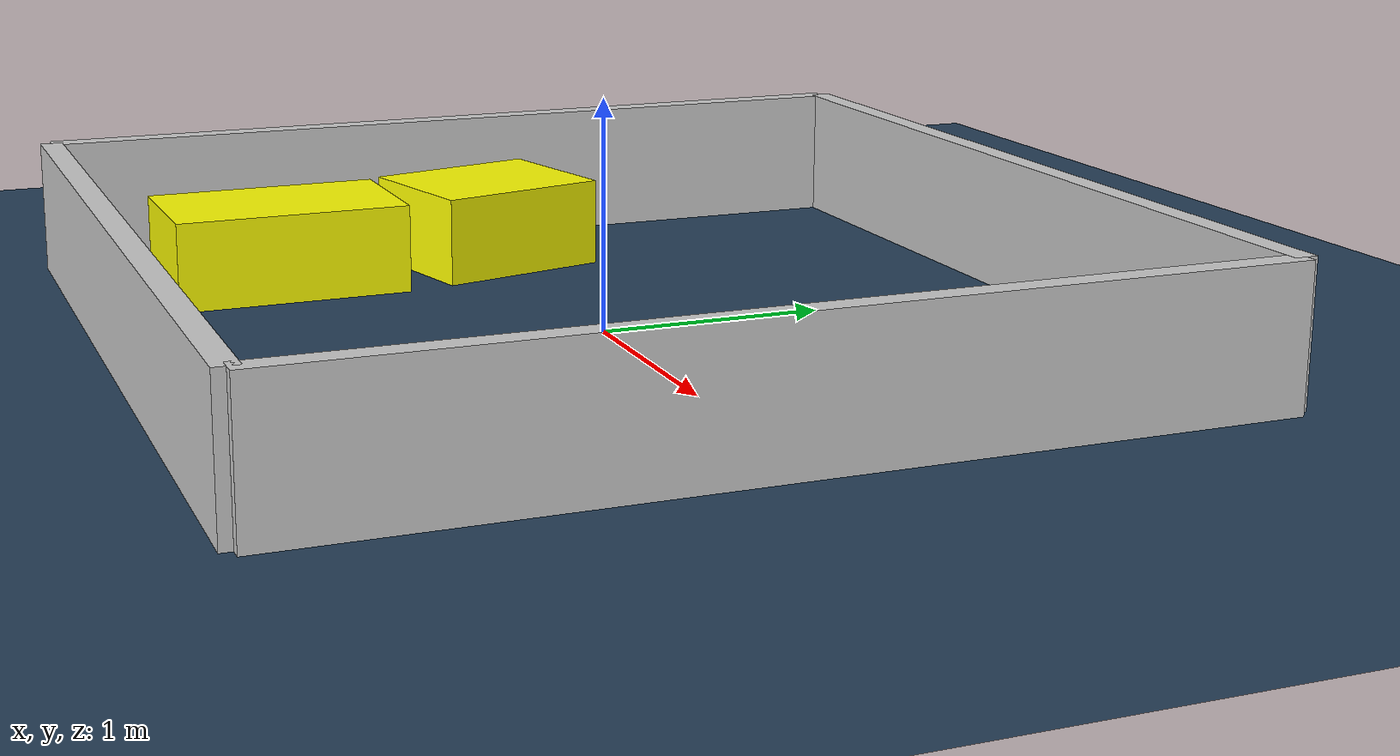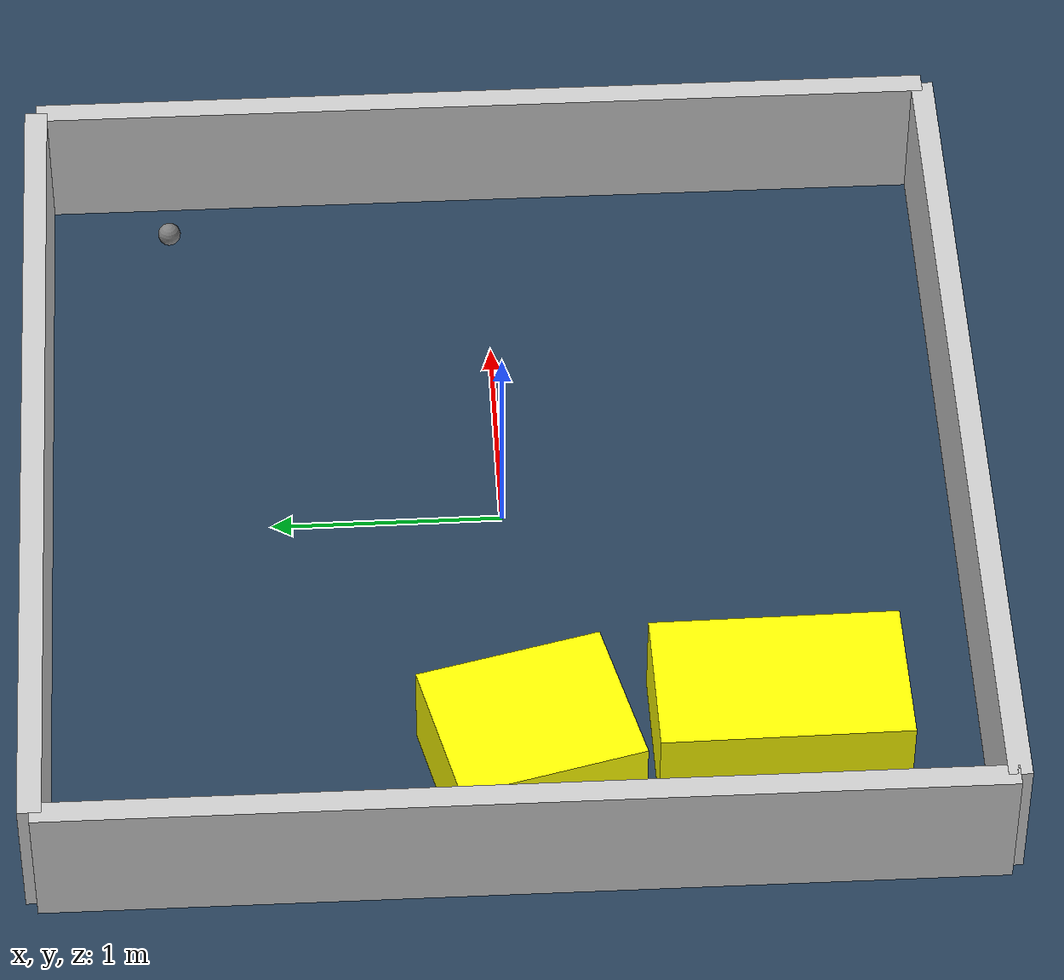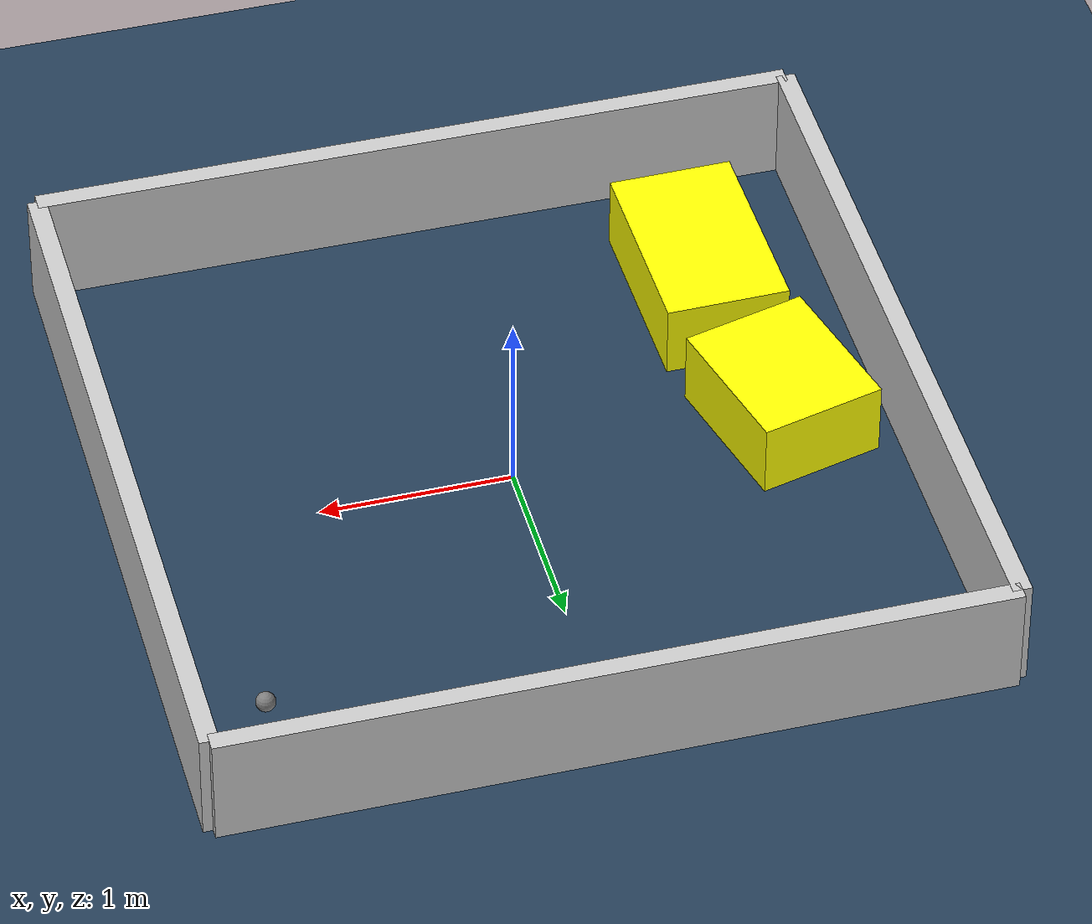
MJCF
<?xml version="1.0" ?>
<mujoco model="generated_environment">
  <option timestep="0.01" integrator="RK4" cone="elliptic"/>
  <default>
    <geom density="1"/>
  </default>
  <asset>
    <texture builtin="gradient" height="3072" rgb1="0.3 0.5 0.7" rgb2="0 0 0" type="skybox" width="512"/>
    <texture builtin="checker" height="300" mark="edge" markrgb="0.8 0.8 0.8" name="groundplane" rgb1="0.2 0.3 0.4" rgb2="0.1 0.2 0.3" type="2d" width="300"/>
    <material name="groundplane" reflectance="0.2" texrepeat="5 5" texture="groundplane" texuniform="true"/>
    <material name="robot" rgba="0.0 1.0 0.0 1"/>
  </asset>
  <worldbody>
    <light dir="0 0 -1" directional="true" pos="0 0 1.5"/>
    <geom condim="4" friction="1.0 0.005 0.001" material="groundplane" name="floor" size="0 0 0.05" type="plane"/>
    <body name="walls">
      <geom name="wall_1" condim="4" pos="-2.0 0.0 0.3" rgba="0.800000011920929 0.800000011920929 0.800000011920929 1.0" size="0.05 2.0 0.3" type="box"/>
      <geom name="wall_2" condim="4" pos="2.0 0.0 0.3" rgba="0.800000011920929 0.800000011920929 0.800000011920929 1.0" size="0.05 2.0 0.3" type="box"/>
      <geom name="wall_3" condim="4" pos="0.0 -2.0 0.3" rgba="0.800000011920929 0.800000011920929 0.800000011920929 1.0" size="2.0 0.05 0.3" type="box"/>
      <geom name="wall_4" condim="4" pos="0.0 2.0 0.3" rgba="0.800000011920929 0.800000011920929 0.800000011920929 1.0" size="2.0 0.05 0.3" type="box"/>
    </body>
    <body name="robot">
      <joint name="joint_x" type="slide" pos="0 0 0" axis="1 0 0"/>
      <joint name="joint_y" type="slide" pos="0 0 0" axis="0 1 0"/>
      <geom name="robot" type="sphere" pos="1.6034237341896813 1.4210582222352088 0.2" size="0.05" mass="5." friction="1.0 0.005 0.0001" condim="4"/>
      <site name="sensor_ball"/>
    </body>
    <body name="obstacle_1_movable">
      <geom name="obstacle_1_movable" condim="4" pos="-1.2759531507991166 -1.0976717465030577 0.2" euler="0 0 270.7566565086655" friction="1.0 0.005 0.001" rgba="1 1 0 1" size="0.5278610679970707 0.3236750670115934 0.2" type="box" mass="0.1"/>
      <joint type="free"/>
    </body>
    <body name="obstacle_2_movable">
      <geom name="obstacle_2_movable" condim="4" pos="-1.4184519005630998 -0.051620109213836196 0.2" euler="0 0 14.011487210785178" friction="1.0 0.005 0.001" rgba="1 1 0 1" size="0.3339153795987941 0.40050258927231996 0.2" type="box" mass="0.1"/>
      <joint type="free"/>
    </body>
  </worldbody>
  <actuator>
    <motor name="actuator_x" joint="joint_x" gear="1" ctrlrange="-1 1"/>
    <motor name="actuator_y" joint="joint_y" gear="1" ctrlrange="-1 1"/>
  </actuator>
</mujoco>
